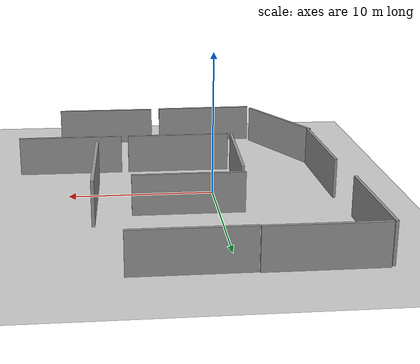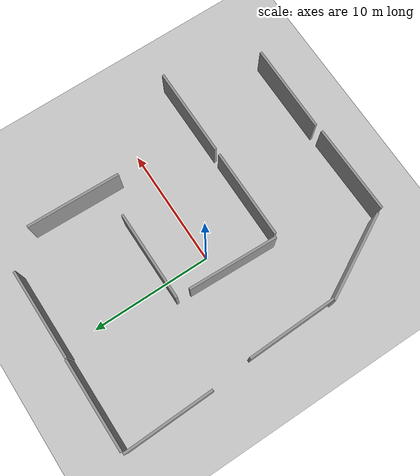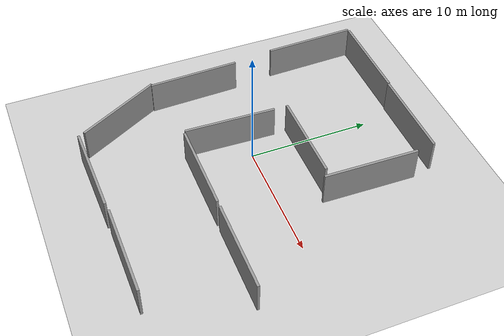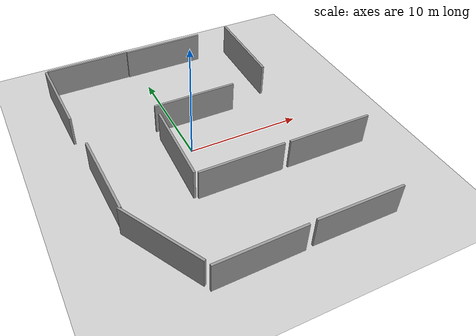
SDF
<sdf version="1.4">
 <world name="default">
  <light name="sun" type="directional">
   <pose>0 0 10 0 -0 0</pose>
   <diffuse>0.8 0.8 0.8 1</diffuse>
   <specular>0.2 0.2 0.2 1</specular>
   <attenuation>
    <range>1000</range>
    <constant>0.9</constant>
    <linear>0.01</linear>
    <quadratic>0.001</quadratic>
   </attenuation>
   <direction>-0.5 0.1 -0.9</direction>
  </light>
  <model name="ground_plane">
   <static>1</static>
   <link name="link">
    <collision name="collision">
     <geometry><plane><normal>0 0 1</normal><size>100 100</size></plane></geometry>
     <surface><friction><ode><mu>100</mu><mu2>50</mu2></ode></friction></surface>
    </collision>
    <visual name="visual">
     <cast_shadows>0</cast_shadows>
     <geometry><plane><normal>0 0 1</normal><size>100 100</size></plane></geometry>
     <material>
      <script><uri>file://media/materials/scripts/gazebo.material</uri><name>Gazebo/Grey</name></script>
     </material>
    </visual>
    <velocity_decay><linear>0</linear><angular>0</angular></velocity_decay>
   </link>
  </model>
  <physics type="ode">
   <max_step_size>0.001</max_step_size>
   <real_time_factor>1</real_time_factor>
   <real_time_update_rate>1000</real_time_update_rate>
   <gravity>0 0 -9.8</gravity>
  </physics>
  <scene><ambient>0.4 0.4 0.4 1</ambient><background>0.7 0.7 0.7 1</background><shadows>1</shadows></scene>
  <spherical_coordinates>
   <surface_model>EARTH_WGS84</surface_model>
   <latitude_deg>0</latitude_deg>
   <longitude_deg>0</longitude_deg>
   <elevation>0</elevation>
   <heading_deg>0</heading_deg>
  </spherical_coordinates>
  <model name="grey_wall">
   <static>1</static>
   <link name="link">
    <pose>0 0 1.4 0 -0 0</pose>
    <collision name="collision"><geometry><box><size>7.5 0.2 2.8</size></box></geometry></collision>
    <visual name="visual">
     <cast_shadows>0</cast_shadows>
     <geometry><box><size>7.5 0.2 2.8</size></box></geometry>
     <material>
      <script>
       <uri>model://grey_wall/materials/scripts</uri>
       <uri>model://grey_wall/materials/textures</uri>
       <name>vrc/grey_wall</name>
      </script>
     </material>
    </visual>
    <velocity_decay><linear>0</linear><angular>0</angular></velocity_decay>
   </link>
   <pose>-4.90354 12.6161 0 0 -0 0</pose>
  </model>
  <model name="grey_wall_0">
   <static>1</static>
   <link name="link">
    <pose>0 0 1.4 0 -0 0</pose>
    <collision name="collision"><geometry><box><size>7.5 0.2 2.8</size></box></geometry></collision>
    <visual name="visual">
     <cast_shadows>0</cast_shadows>
     <geometry><box><size>7.5 0.2 2.8</size></box></geometry>
     <material>
      <script>
       <uri>model://grey_wall/materials/scripts</uri>
       <uri>model://grey_wall/materials/textures</uri>
       <name>vrc/grey_wall</name>
      </script>
     </material>
    </visual>
    <velocity_decay><linear>0</linear><angular>0</angular></velocity_decay>
   </link>
   <pose>-8.73246 8.83273 0 0 -0 1.59678</pose>
  </model>
  <model name="grey_wall_1">
   <static>1</static>
   <link name="link">
    <pose>0 0 1.4 0 -0 0</pose>
    <collision name="collision"><geometry><box><size>7.5 0.2 2.8</size></box></geometry></collision>
    <visual name="visual">
     <cast_shadows>0</cast_shadows>
     <geometry><box><size>7.5 0.2 2.8</size></box></geometry>
     <material>
      <script>
       <uri>model://grey_wall/materials/scripts</uri>
       <uri>model://grey_wall/materials/textures</uri>
       <name>vrc/grey_wall</name>
      </script>
     </material>
    </visual>
    <velocity_decay><linear>0</linear><angular>0</angular></velocity_decay>
   </link>
   <pose>7.99116 6.1644 1.89537 0 0 -1.59597</pose>
  </model>
  <model name="grey_wall_2">
   <static>1</static>
   <link name="link">
    <pose>0 0 1.4 0 -0 0</pose>
    <collision name="collision"><geometry><box><size>7.5 0.2 2.8</size></box></geometry></collision>
    <visual name="visual">
     <cast_shadows>0</cast_shadows>
     <geometry><box><size>7.5 0.2 2.8</size></box></geometry>
     <material>
      <script>
       <uri>model://grey_wall/materials/scripts</uri>
       <uri>model://grey_wall/materials/textures</uri>
       <name>vrc/grey_wall</name>
      </script>
     </material>
    </visual>
    <velocity_decay><linear>0</linear><angular>0</angular></velocity_decay>
   </link>
   <pose>-8.17086 -2.04032 0 0 -0 1.59817</pose>
  </model>
  <model name="grey_wall_3">
   <static>1</static>
   <link name="link">
    <pose>0 0 1.4 0 -0 0</pose>
    <collision name="collision"><geometry><box><size>7.5 0.2 2.8</size></box></geometry></collision>
    <visual name="visual">
     <cast_shadows>0</cast_shadows>
     <geometry><box><size>7.5 0.2 2.8</size></box></geometry>
     <material>
      <script>
       <uri>model://grey_wall/materials/scripts</uri>
       <uri>model://grey_wall/materials/textures</uri>
       <name>vrc/grey_wall</name>
      </script>
     </material>
    </visual>
    <velocity_decay><linear>0</linear><angular>0</angular></velocity_decay>
   </link>
   <pose>2.66187 12.5505 0 0 -0 0</pose>
  </model>
  <model name="grey_wall_4">
   <static>1</static>
   <link name="link">
    <pose>0 0 1.4 0 -0 0</pose>
    <collision name="collision"><geometry><box><size>7.5 0.2 2.8</size></box></geometry></collision>
    <visual name="visual">
     <cast_shadows>0</cast_shadows>
     <geometry><box><size>7.5 0.2 2.8</size></box></geometry>
     <material>
      <script>
       <uri>model://grey_wall/materials/scripts</uri>
       <uri>model://grey_wall/materials/textures</uri>
       <name>vrc/grey_wall</name>
      </script>
     </material>
    </visual>
    <velocity_decay><linear>0</linear><angular>0</angular></velocity_decay>
   </link>
   <pose>-0.762575 -12.7116 0 0 -0 0.016405</pose>
  </model>
  <model name="grey_wall_5">
   <static>1</static>
   <link name="link">
    <pose>0 0 1.4 0 -0 0</pose>
    <collision name="collision"><geometry><box><size>7.5 0.2 2.8</size></box></geometry></collision>
    <visual name="visual">
     <cast_shadows>0</cast_shadows>
     <geometry><box><size>7.5 0.2 2.8</size></box></geometry>
     <material>
      <script>
       <uri>model://grey_wall/materials/scripts</uri>
       <uri>model://grey_wall/materials/textures</uri>
       <name>vrc/grey_wall</name>
      </script>
     </material>
    </visual>
    <velocity_decay><linear>0</linear><angular>0</angular></velocity_decay>
   </link>
   <pose>7.38599 -12.5578 0 0 -0 0</pose>
  </model>
  <model name="grey_wall_6">
   <static>1</static>
   <link name="link">
    <pose>0 0 1.4 0 -0 0</pose>
    <collision name="collision"><geometry><box><size>7.5 0.2 2.8</size></box></geometry></collision>
    <visual name="visual">
     <cast_shadows>0</cast_shadows>
     <geometry><box><size>7.5 0.2 2.8</size></box></geometry>
     <material>
      <script>
       <uri>model://grey_wall/materials/scripts</uri>
       <uri>model://grey_wall/materials/textures</uri>
       <name>vrc/grey_wall</name>
      </script>
     </material>
    </visual>
    <velocity_decay><linear>0</linear><angular>0</angular></velocity_decay>
   </link>
   <pose>1.98925 3.69798 0 0 -0 0</pose>
  </model>
  <model name="grey_wall_7">
   <static>1</static>
   <link name="link">
    <pose>0 0 1.4 0 -0 0</pose>
    <collision name="collision"><geometry><box><size>7.5 0.2 2.8</size></box></geometry></collision>
    <visual name="visual">
     <cast_shadows>0</cast_shadows>
     <geometry><box><size>7.5 0.2 2.8</size></box></geometry>
     <material>
      <script>
       <uri>model://grey_wall/materials/scripts</uri>
       <uri>model://grey_wall/materials/textures</uri>
       <name>vrc/grey_wall</name>
      </script>
     </material>
    </visual>
    <velocity_decay><linear>0</linear><angular>0</angular></velocity_decay>
   </link>
   <pose>-6.44428 -9 0 0 0 -1.07528</pose>
  </model>
  <model name="grey_wall_8">
   <static>1</static>
   <link name="link">
    <pose>0 0 1.4 0 -0 0</pose>
    <collision name="collision"><geometry><box><size>7.5 0.2 2.8</size></box></geometry></collision>
    <visual name="visual">
     <cast_shadows>0</cast_shadows>
     <geometry><box><size>7.5 0.2 2.8</size></box></geometry>
     <material>
      <script>
       <uri>model://grey_wall/materials/scripts</uri>
       <uri>model://grey_wall/materials/textures</uri>
       <name>vrc/grey_wall</name>
      </script>
     </material>
    </visual>
    <velocity_decay><linear>0</linear><angular>0</angular></velocity_decay>
   </link>
   <pose>-1.87113 -1.15369 0 0 -0 1.53671</pose>
  </model>
  <model name="grey_wall_9">
   <static>1</static>
   <link name="link">
    <pose>0 0 1.4 0 -0 0</pose>
    <collision name="collision"><geometry><box><size>7.5 0.2 2.8</size></box></geometry></collision>
    <visual name="visual">
     <cast_shadows>0</cast_shadows>
     <geometry><box><size>7.5 0.2 2.8</size></box></geometry>
     <material>
      <script>
       <uri>model://grey_wall/materials/scripts</uri>
       <uri>model://grey_wall/materials/textures</uri>
       <name>vrc/grey_wall</name>
      </script>
     </material>
    </visual>
    <velocity_decay><linear>0</linear><angular>0</angular></velocity_decay>
   </link>
   <pose>2 -5 0 0 -0 0</pose>
  </model>
  <model name="grey_wall_10">
   <static>1</static>
   <link name="link">
    <pose>0 0 1.4 0 -0 0</pose>
    <collision name="collision"><geometry><box><size>7.5 0.2 2.8</size></box></geometry></collision>
    <visual name="visual">
     <cast_shadows>0</cast_shadows>
     <geometry><box><size>7.5 0.2 2.8</size></box></geometry>
     <material>
      <script>
       <uri>model://grey_wall/materials/scripts</uri>
       <uri>model://grey_wall/materials/textures</uri>
       <name>vrc/grey_wall</name>
      </script>
     </material>
    </visual>
    <velocity_decay><linear>0</linear><angular>0</angular></velocity_decay>
   </link>
   <pose>10 -5 0 0 -0 0</pose>
  </model>
 </world>
</sdf>
